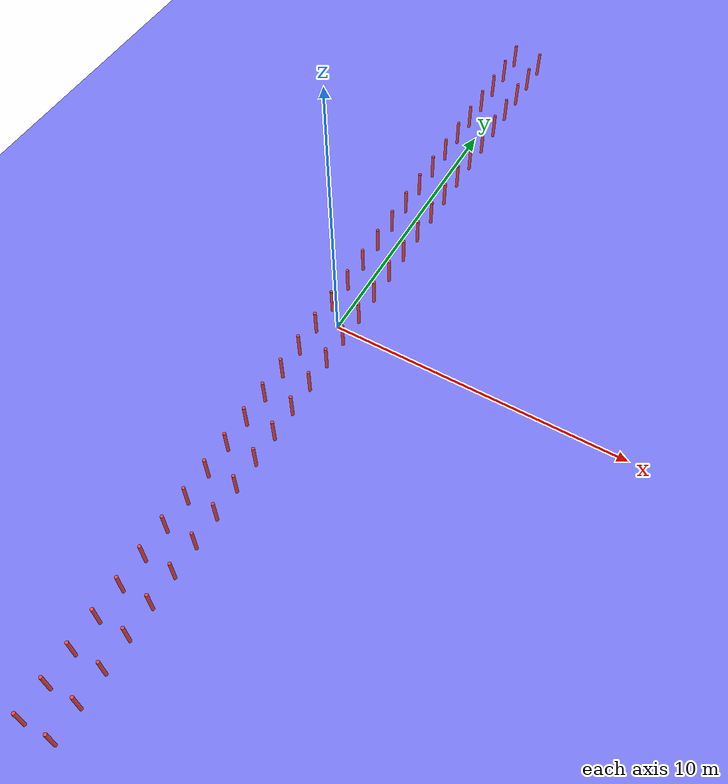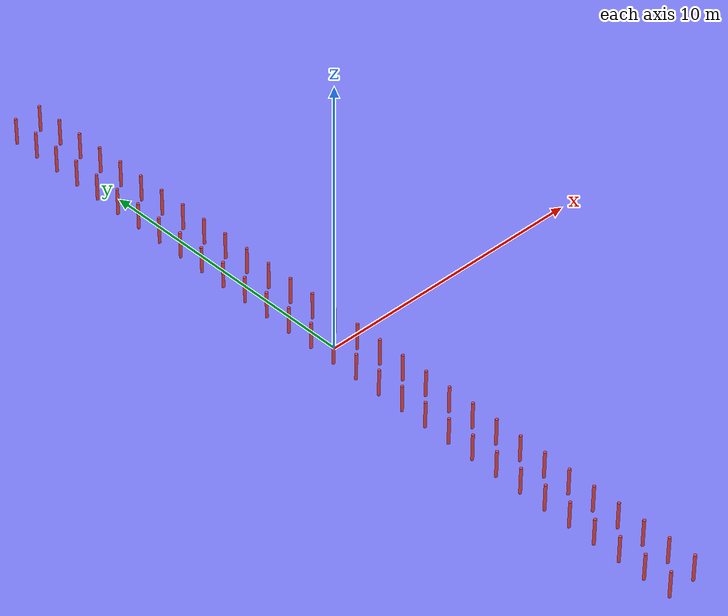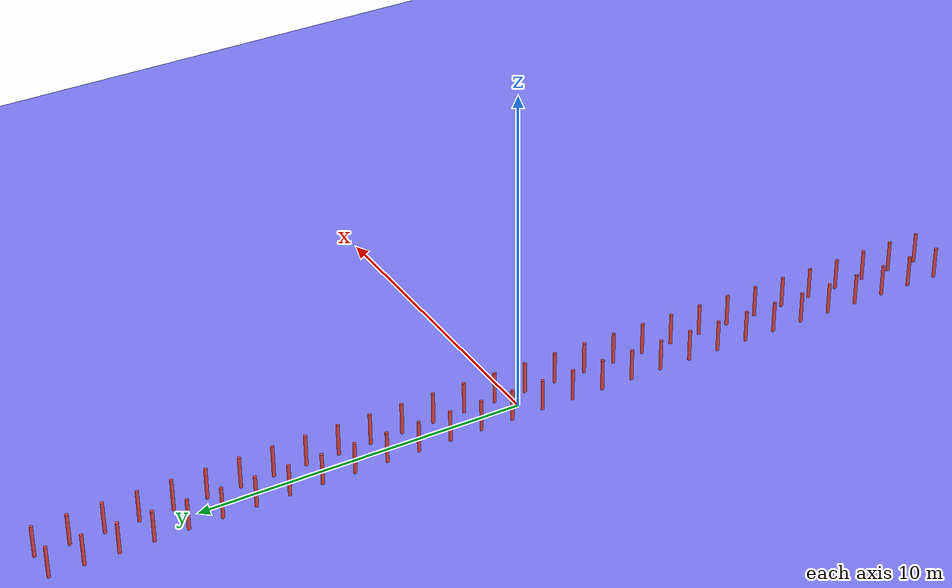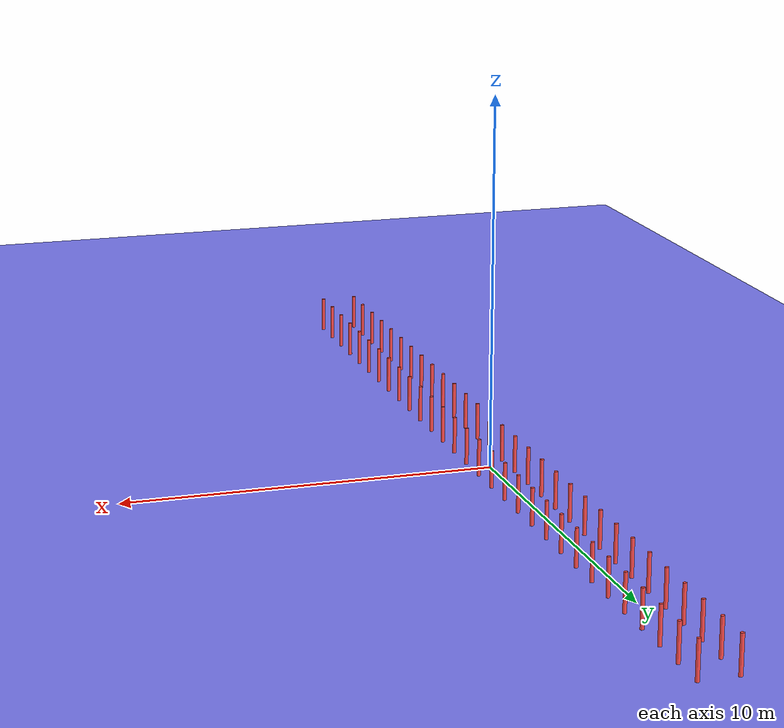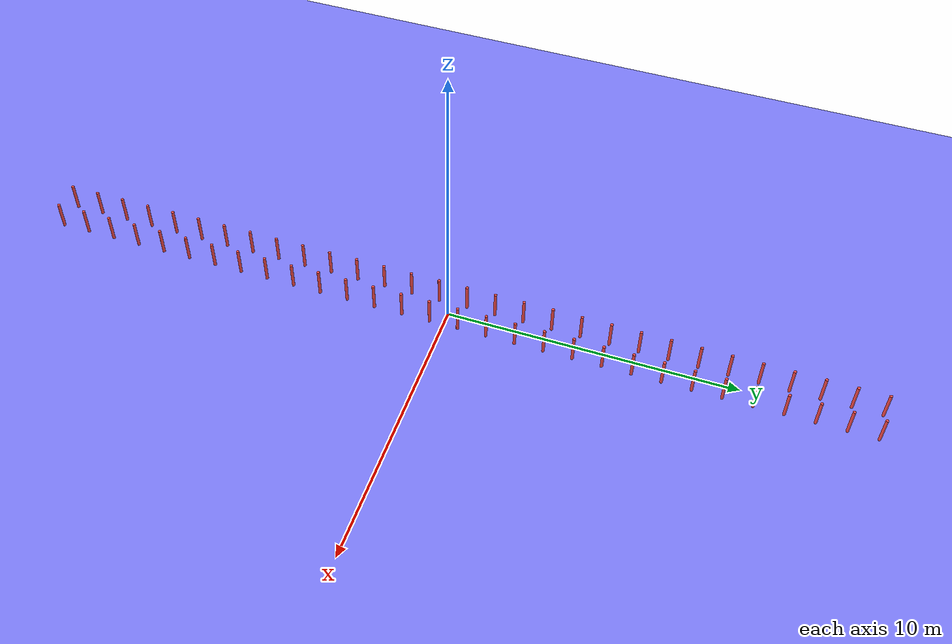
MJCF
<mujoco model="two_poles_solid_colors">

  <compiler angle="degree" coordinate="local" inertiafromgeom="true" autolimits="true" />
  <option timestep="0.01" integrator="RK4" gravity="0 0 -9.81" />

  <default>
    <geom friction="0 10000 0" />
  </default>

  <worldbody>

    <light name="sun" pos="0 0 5" dir="0 0 -1" diffuse="1 1 1" specular="0.1 0.1 0.1" directional="true" cutoff="100" />

    <geom name="ground" type="plane" pos="0 0 0" size="100 100 0.5" rgba="0.5 0.5 1 1" />

    <body><geom type="cylinder" pos="-0.50 -14.50 0.5" size="0.05 0.5" rgba="1 0.3 0.3 1" name="pole_0_0" /></body><body><geom type="cylinder" pos="0.50 -14.50 0.5" size="0.05 0.5" rgba="1 0.3 0.3 1" name="pole_0_1" /></body><body><geom type="cylinder" pos="-0.50 -13.50 0.5" size="0.05 0.5" rgba="1 0.3 0.3 1" name="pole_1_0" /></body><body><geom type="cylinder" pos="0.50 -13.50 0.5" size="0.05 0.5" rgba="1 0.3 0.3 1" name="pole_1_1" /></body><body><geom type="cylinder" pos="-0.50 -12.50 0.5" size="0.05 0.5" rgba="1 0.3 0.3 1" name="pole_2_0" /></body><body><geom type="cylinder" pos="0.50 -12.50 0.5" size="0.05 0.5" rgba="1 0.3 0.3 1" name="pole_2_1" /></body><body><geom type="cylinder" pos="-0.50 -11.50 0.5" size="0.05 0.5" rgba="1 0.3 0.3 1" name="pole_3_0" /></body><body><geom type="cylinder" pos="0.50 -11.50 0.5" size="0.05 0.5" rgba="1 0.3 0.3 1" name="pole_3_1" /></body><body><geom type="cylinder" pos="-0.50 -10.50 0.5" size="0.05 0.5" rgba="1 0.3 0.3 1" name="pole_4_0" /></body><body><geom type="cylinder" pos="0.50 -10.50 0.5" size="0.05 0.5" rgba="1 0.3 0.3 1" name="pole_4_1" /></body><body><geom type="cylinder" pos="-0.50 -9.50 0.5" size="0.05 0.5" rgba="1 0.3 0.3 1" name="pole_5_0" /></body><body><geom type="cylinder" pos="0.50 -9.50 0.5" size="0.05 0.5" rgba="1 0.3 0.3 1" name="pole_5_1" /></body><body><geom type="cylinder" pos="-0.50 -8.50 0.5" size="0.05 0.5" rgba="1 0.3 0.3 1" name="pole_6_0" /></body><body><geom type="cylinder" pos="0.50 -8.50 0.5" size="0.05 0.5" rgba="1 0.3 0.3 1" name="pole_6_1" /></body><body><geom type="cylinder" pos="-0.50 -7.50 0.5" size="0.05 0.5" rgba="1 0.3 0.3 1" name="pole_7_0" /></body><body><geom type="cylinder" pos="0.50 -7.50 0.5" size="0.05 0.5" rgba="1 0.3 0.3 1" name="pole_7_1" /></body><body><geom type="cylinder" pos="-0.50 -6.50 0.5" size="0.05 0.5" rgba="1 0.3 0.3 1" name="pole_8_0" /></body><body><geom type="cylinder" pos="0.50 -6.50 0.5" size="0.05 0.5" rgba="1 0.3 0.3 1" name="pole_8_1" /></body><body><geom type="cylinder" pos="-0.50 -5.50 0.5" size="0.05 0.5" rgba="1 0.3 0.3 1" name="pole_9_0" /></body><body><geom type="cylinder" pos="0.50 -5.50 0.5" size="0.05 0.5" rgba="1 0.3 0.3 1" name="pole_9_1" /></body><body><geom type="cylinder" pos="-0.50 -4.50 0.5" size="0.05 0.5" rgba="1 0.3 0.3 1" name="pole_10_0" /></body><body><geom type="cylinder" pos="0.50 -4.50 0.5" size="0.05 0.5" rgba="1 0.3 0.3 1" name="pole_10_1" /></body><body><geom type="cylinder" pos="-0.50 -3.50 0.5" size="0.05 0.5" rgba="1 0.3 0.3 1" name="pole_11_0" /></body><body><geom type="cylinder" pos="0.50 -3.50 0.5" size="0.05 0.5" rgba="1 0.3 0.3 1" name="pole_11_1" /></body><body><geom type="cylinder" pos="-0.50 -2.50 0.5" size="0.05 0.5" rgba="1 0.3 0.3 1" name="pole_12_0" /></body><body><geom type="cylinder" pos="0.50 -2.50 0.5" size="0.05 0.5" rgba="1 0.3 0.3 1" name="pole_12_1" /></body><body><geom type="cylinder" pos="-0.50 -1.50 0.5" size="0.05 0.5" rgba="1 0.3 0.3 1" name="pole_13_0" /></body><body><geom type="cylinder" pos="0.50 -1.50 0.5" size="0.05 0.5" rgba="1 0.3 0.3 1" name="pole_13_1" /></body><body><geom type="cylinder" pos="-0.50 -0.50 0.5" size="0.05 0.5" rgba="1 0.3 0.3 1" name="pole_14_0" /></body><body><geom type="cylinder" pos="0.50 -0.50 0.5" size="0.05 0.5" rgba="1 0.3 0.3 1" name="pole_14_1" /></body><body><geom type="cylinder" pos="-0.50 0.50 0.5" size="0.05 0.5" rgba="1 0.3 0.3 1" name="pole_15_0" /></body><body><geom type="cylinder" pos="0.50 0.50 0.5" size="0.05 0.5" rgba="1 0.3 0.3 1" name="pole_15_1" /></body><body><geom type="cylinder" pos="-0.50 1.50 0.5" size="0.05 0.5" rgba="1 0.3 0.3 1" name="pole_16_0" /></body><body><geom type="cylinder" pos="0.50 1.50 0.5" size="0.05 0.5" rgba="1 0.3 0.3 1" name="pole_16_1" /></body><body><geom type="cylinder" pos="-0.50 2.50 0.5" size="0.05 0.5" rgba="1 0.3 0.3 1" name="pole_17_0" /></body><body><geom type="cylinder" pos="0.50 2.50 0.5" size="0.05 0.5" rgba="1 0.3 0.3 1" name="pole_17_1" /></body><body><geom type="cylinder" pos="-0.50 3.50 0.5" size="0.05 0.5" rgba="1 0.3 0.3 1" name="pole_18_0" /></body><body><geom type="cylinder" pos="0.50 3.50 0.5" size="0.05 0.5" rgba="1 0.3 0.3 1" name="pole_18_1" /></body><body><geom type="cylinder" pos="-0.50 4.50 0.5" size="0.05 0.5" rgba="1 0.3 0.3 1" name="pole_19_0" /></body><body><geom type="cylinder" pos="0.50 4.50 0.5" size="0.05 0.5" rgba="1 0.3 0.3 1" name="pole_19_1" /></body><body><geom type="cylinder" pos="-0.50 5.50 0.5" size="0.05 0.5" rgba="1 0.3 0.3 1" name="pole_20_0" /></body><body><geom type="cylinder" pos="0.50 5.50 0.5" size="0.05 0.5" rgba="1 0.3 0.3 1" name="pole_20_1" /></body><body><geom type="cylinder" pos="-0.50 6.50 0.5" size="0.05 0.5" rgba="1 0.3 0.3 1" name="pole_21_0" /></body><body><geom type="cylinder" pos="0.50 6.50 0.5" size="0.05 0.5" rgba="1 0.3 0.3 1" name="pole_21_1" /></body><body><geom type="cylinder" pos="-0.50 7.50 0.5" size="0.05 0.5" rgba="1 0.3 0.3 1" name="pole_22_0" /></body><body><geom type="cylinder" pos="0.50 7.50 0.5" size="0.05 0.5" rgba="1 0.3 0.3 1" name="pole_22_1" /></body><body><geom type="cylinder" pos="-0.50 8.50 0.5" size="0.05 0.5" rgba="1 0.3 0.3 1" name="pole_23_0" /></body><body><geom type="cylinder" pos="0.50 8.50 0.5" size="0.05 0.5" rgba="1 0.3 0.3 1" name="pole_23_1" /></body><body><geom type="cylinder" pos="-0.50 9.50 0.5" size="0.05 0.5" rgba="1 0.3 0.3 1" name="pole_24_0" /></body><body><geom type="cylinder" pos="0.50 9.50 0.5" size="0.05 0.5" rgba="1 0.3 0.3 1" name="pole_24_1" /></body><body><geom type="cylinder" pos="-0.50 10.50 0.5" size="0.05 0.5" rgba="1 0.3 0.3 1" name="pole_25_0" /></body><body><geom type="cylinder" pos="0.50 10.50 0.5" size="0.05 0.5" rgba="1 0.3 0.3 1" name="pole_25_1" /></body><body><geom type="cylinder" pos="-0.50 11.50 0.5" size="0.05 0.5" rgba="1 0.3 0.3 1" name="pole_26_0" /></body><body><geom type="cylinder" pos="0.50 11.50 0.5" size="0.05 0.5" rgba="1 0.3 0.3 1" name="pole_26_1" /></body><body><geom type="cylinder" pos="-0.50 12.50 0.5" size="0.05 0.5" rgba="1 0.3 0.3 1" name="pole_27_0" /></body><body><geom type="cylinder" pos="0.50 12.50 0.5" size="0.05 0.5" rgba="1 0.3 0.3 1" name="pole_27_1" /></body><body><geom type="cylinder" pos="-0.50 13.50 0.5" size="0.05 0.5" rgba="1 0.3 0.3 1" name="pole_28_0" /></body><body><geom type="cylinder" pos="0.50 13.50 0.5" size="0.05 0.5" rgba="1 0.3 0.3 1" name="pole_28_1" /></body><body><geom type="cylinder" pos="-0.50 14.50 0.5" size="0.05 0.5" rgba="1 0.3 0.3 1" name="pole_29_0" /></body><body><geom type="cylinder" pos="0.50 14.50 0.5" size="0.05 0.5" rgba="1 0.3 0.3 1" name="pole_29_1" /></body></worldbody>
</mujoco>
